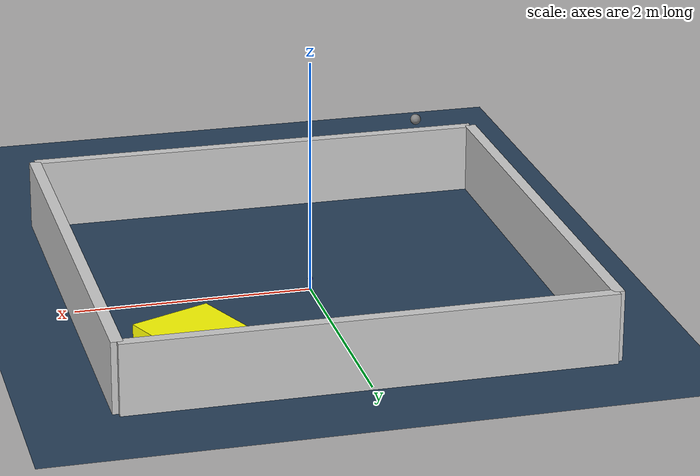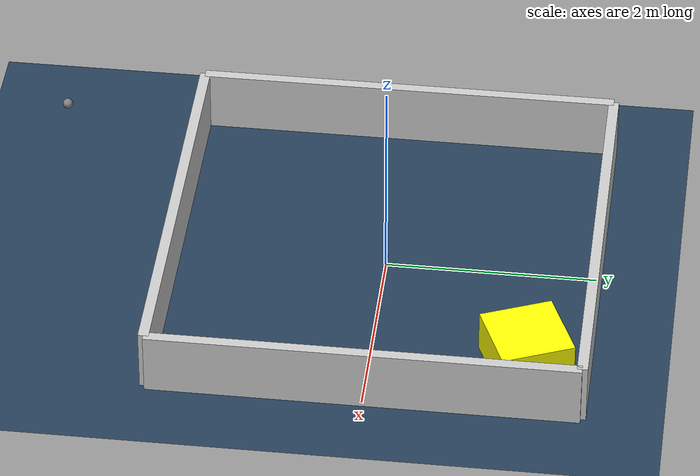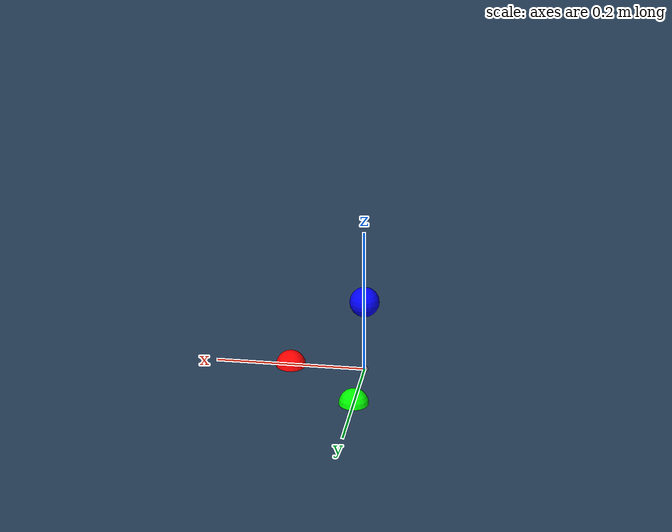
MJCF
<?xml version="1.0" ?>
<mujoco model="generated_environment">
  <option timestep="0.01" integrator="RK4" cone="elliptic"/>
  <default>
    <geom density="1" />
  </default>
  <asset>
    <texture builtin="gradient" height="3072" rgb1="0.3 0.5 0.7" rgb2="0 0 0" type="skybox" width="512"/>
    <texture builtin="checker" height="300" mark="edge" markrgb="0.8 0.8 0.8" name="groundplane" rgb1="0.2 0.3 0.4" rgb2="0.1 0.2 0.3" type="2d" width="300"/>
    <material name="groundplane" reflectance="0.2" texrepeat="5 5" texture="groundplane" texuniform="true"/>
    <texture name="body" type="cube" builtin="flat" mark="cross" width="128" height="128" rgb1="0.8 0.6 0.4" rgb2="0.8 0.6 0.4" markrgb="1 1 1" random="0.01"/>
    <material name="body" texture="body" texuniform="true" rgba="0.8 0.6 .4 1"/>
    <material name="robot" rgba="0.0 1.0 0.0 1"/>
  </asset>

  <visual>
    <rgba contactforce="0.2 0.98 0.2 0.8"/>
    <scale forcewidth="0.005" contactwidth="1.0" contactheight="0.04"/>
    <map force="1"/>
  </visual>
  <worldbody>
    <light dir="0 0 -1" directional="true" pos="0 0 1.5"/>
    <geom condim="4" friction="1.0 0.005 0.001" material="groundplane" name="floor" size="0 0 0.05" type="plane"/>

    <body name="robot">
      <joint name="joint_x" type="slide" pos="0 0 0" axis="1 0 0"/>
      <joint name="joint_y" type="slide" pos="0 0 0" axis="0 1 0"/>
      <geom name="robot" type="sphere" pos="-1.877840559997522 -3.355819037237426 0.2" size="0.05" mass="5." friction="1.0 0.005 0.001" condim="4"/>
      <site name="sensor_ball"/>
    </body>

    <body name="obstacle_1_movable" >
      <geom name="obstacle_1_movable" condim="4" rgba="1 1 0 1" pos="1.2851988978520885 1.444452229747672 0.2" euler="0 0 112.77846609561904" size="0.35 0.35 0.2" type="box" mass="0.1" friction="1.0 0.005 0.001"/>
      <joint type="free"/>
      <site name="FT"/>
    </body>

    <body name="walls" >
      <geom name="wall_1" pos="-2.0 0 0.3" rgba="0.8 0.8 0.8 1" size="0.05 2.0 0.3" type="box"/>
      <geom name="wall_2" pos="2.0 0 0.3" rgba="0.8 0.8 0.8 1" size="0.05 2.0 0.3" type="box"/>
      <geom name="wall_3" pos="0 -2.0 0.3" rgba="0.8 0.8 0.8 1" size="2.0 0.05 0.3" type="box"/>
      <geom name="wall_4" pos="0 2.0 0.3" rgba="0.8 0.8 0.8 1" size="2.0 0.05 0.3" type="box"/>
    </body>

    <site type="sphere" size="0.02" rgba="1 0 0 1" pos="0.1 0 0"/>
    <site type="sphere" size="0.02" rgba="0 1 0 1" pos="0 0.1 0"/>
    <site type="sphere" size="0.02" rgba="0 0 1 1" pos="0 0 0.1"/>

  </worldbody>

  <actuator>
    <velocity name="actuator_x" joint="joint_x" gear="1" ctrlrange="-1 1"/>
    <velocity name="actuator_y" joint="joint_y" gear="1" ctrlrange="-1 1"/>
  </actuator>
</mujoco>
